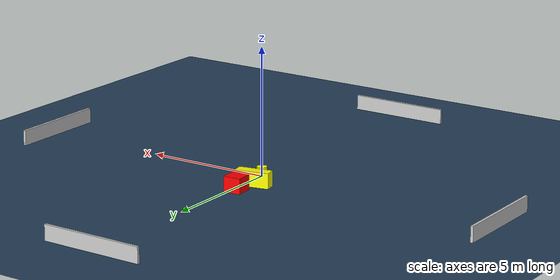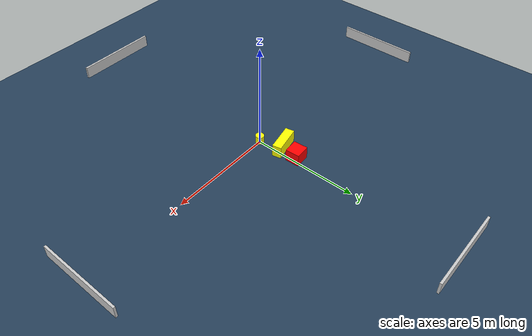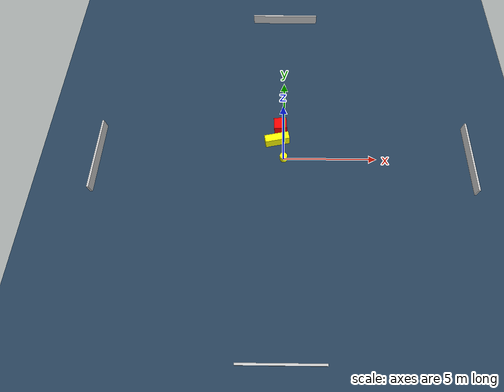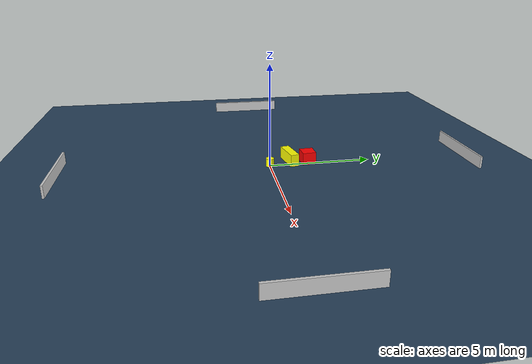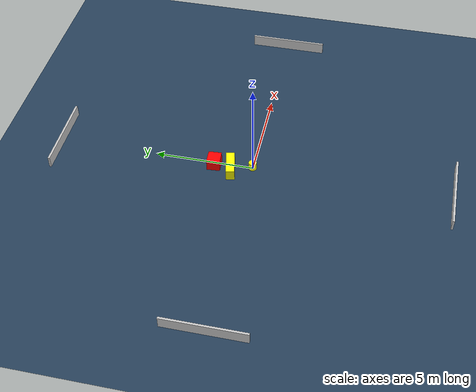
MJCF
<?xml version="1.0" ?>
<mujoco model="generated_environment">
  <option timestep="0.01" integrator="RK4" cone="elliptic"/>
  <default>
    <geom density="1"/>
  </default>
  <asset>
    <texture builtin="gradient" height="3072" name="skybox" rgb1="0.3 0.5 0.7" rgb2="0 0 0" type="skybox" width="512"/>
    <texture builtin="checker" height="300" name="groundplane" rgb1="0.2 0.3 0.4" rgb2="0.1 0.2 0.3" type="2d" width="300"/>
    <material name="groundplane" reflectance="0.2" texrepeat="5 5" texture="groundplane"/>
  </asset>
  <worldbody>
    <light dir="0 0 -1" directional="true" pos="0 0 1.5"/>
    <geom condim="3" friction="0.5 0.005 0.001" material="groundplane" name="floor" pos="0 0 0" size="0 0 0.05" type="plane"/>
    <body name="walls">
      <geom name="wall_1" condim="4" pos="-10.0 0.0 0.3" rgba="0.800000011920929 0.800000011920929 0.800000011920929 1.0" size="0.05 2.0 0.3" type="box"/>
      <geom name="wall_2" condim="4" pos="10.0 0.0 0.3" rgba="0.800000011920929 0.800000011920929 0.800000011920929 1.0" size="0.05 2.0 0.3" type="box"/>
      <geom name="wall_3" condim="4" pos="0.0 -10.0 0.3" rgba="0.800000011920929 0.800000011920929 0.800000011920929 1.0" size="2.0 0.05 0.3" type="box"/>
      <geom name="wall_4" condim="4" pos="0.0 10.0 0.3" rgba="0.800000011920929 0.800000011920929 0.800000011920929 1.0" size="2.0 0.05 0.3" type="box"/>
    </body>
    <body name="robot">
      <joint name="joint_x" type="slide" pos="0 0 0" axis="1 0 0"/>
      <joint name="joint_y" type="slide" pos="0 0 0" axis="0 1 0"/>
      <geom name="robot" type="cylinder" pos="0.0 0.0 0.2" size="0.2 0.2 0.0" mass="5.0" friction="1.0 0.005 0.0001" condim="4" rgba="1.0 1.0 0.0 1.0"/>
    </body>
    <body name="obstacle_1_movable">
      <geom name="obstacle_1_movable" condim="4" pos="-0.36859620805601784 1.0631349911048364 0.3" euler="0 0 281.7440755936333" friction="0.0 0.005 0.001" rgba="1.0 1.0 0.0 1.0" size="0.21227665716788668 0.6611583847130102 0.3" type="box" mass="0.1"/>
      <joint type="free"/>
    </body>
    <body name="obstacle_2_static">
      <geom name="obstacle_2_static" condim="4" pos="-0.19641013844269817 1.9352915994870459 0.3" euler="0 0 273.61483653328384" friction="0.0 0.005 0.001" rgba="1.0 0.0 0.0 1.0" size="0.3319808713051934 0.3451897025234497 0.3" type="box"/>
    </body>
  </worldbody>
  <actuator>
    <motor name="actuator_x" joint="joint_x" gear="1" ctrlrange="-1 1"/>
    <motor name="actuator_y" joint="joint_y" gear="1" ctrlrange="-1 1"/>
  </actuator>
</mujoco>
